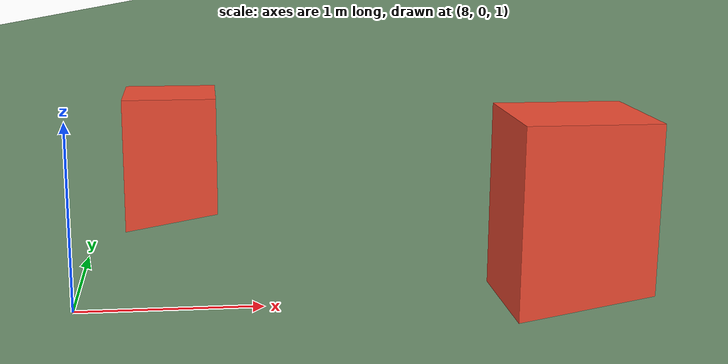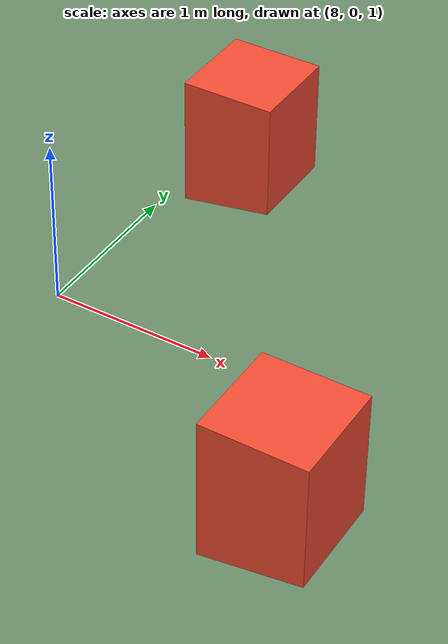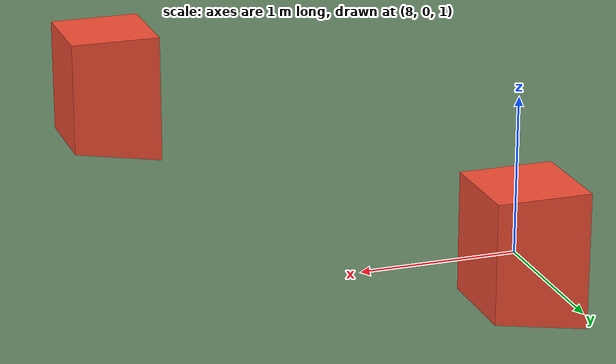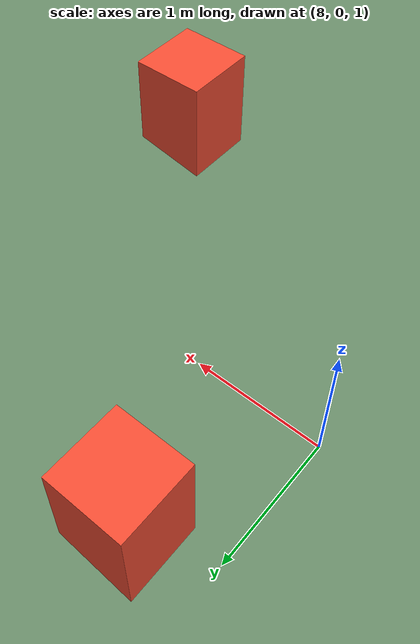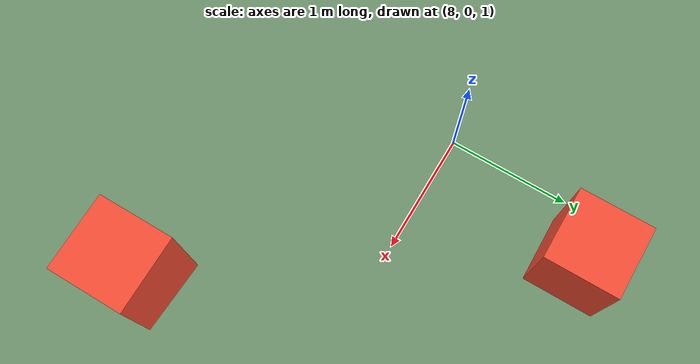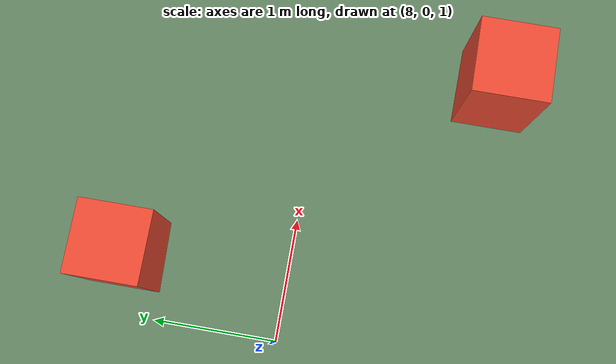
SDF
<?xml version="1.0" ?>
<sdf version="1.6">
  <world name="slope_lidar">
    <plugin filename="ignition-gazebo-physics-system" name="ignition::gazebo::systems::Physics"/>
    <plugin filename="ignition-gazebo-user-commands-system" name="ignition::gazebo::systems::UserCommands"/>
    <plugin filename="ignition-gazebo-scene-broadcaster-system" name="ignition::gazebo::systems::SceneBroadcaster"/>
    <plugin filename="ignition-gazebo-sensors-system" name="ignition::gazebo::systems::Sensors">
      <render_engine>ogre2</render_engine>
    </plugin>
    <plugin filename="ignition-gazebo-imu-system" name="ignition::gazebo::systems::Imu"/>
    <plugin filename="ignition-gazebo-navsat-system" name="ignition::gazebo::systems::NavSat"/>

    <spherical_coordinates>
      <surface_model>EARTH_WGS84</surface_model>
      <latitude_deg>-31.4858037</latitude_deg>
      <longitude_deg>-64.2410570</longitude_deg>
      <elevation>0.0</elevation>
    </spherical_coordinates>

    <light name="sun" type="directional">
      <cast_shadows>0</cast_shadows>
      <pose>0 0 10 0 0 0</pose>
      <diffuse>0.8 0.8 0.8 1</diffuse>
      <specular>0.8 0.8 0.8 1</specular>
      <attenuation>
        <range>1000</range>
        <constant>0.9</constant>
        <linear>0.01</linear>
        <quadratic>0.001</quadratic>
      </attenuation>
      <direction>-0.5 0.1 -0.9</direction>
    </light>

    <model name="ground_plane">
      <static>1</static>
      <link name="link">
        <collision name="collision">
          <pose>0 0 -0.05 0 0 0</pose>
          <geometry>
            <box>
              <size>2000 2000 0.1</size>
            </box>
          </geometry>
          <max_contacts>10</max_contacts>
        </collision>
        <visual name="visual">
          <geometry>
            <plane>
              <normal>0 0 1</normal>
              <size>2000 2000</size>
            </plane>
          </geometry>
          <material>
            <ambient>0.72 0.72 0.72 1</ambient>
            <diffuse>0.72 0.72 0.72 1</diffuse>
            <specular>0.2 0.2 0.2 1</specular>
          </material>
        </visual>
      </link>
    </model>

    <model name="front_slope_10deg">
      <static>1</static>
      <!-- Lower edge starts around x=2 m; upper edge reaches about z=2.1 m.
           Keep the ramp wide so the LiDAR ROI does not see artificial side faces. -->
      <pose>8 0 1.04 0 -0.1745329252 0</pose>
      <link name="link">
        <collision name="collision">
          <geometry>
            <box>
              <size>12 40 0.15</size>
            </box>
          </geometry>
          <max_contacts>10</max_contacts>
        </collision>
        <visual name="visual">
          <geometry>
            <box>
              <size>12 40 0.15</size>
            </box>
          </geometry>
          <material>
            <ambient>0.35 0.45 0.35 1</ambient>
            <diffuse>0.42 0.56 0.42 1</diffuse>
            <specular>0.1 0.1 0.1 1</specular>
          </material>
        </visual>
      </link>
    </model>

    <model name="slope_obstacle_left">
      <static>1</static>
      <pose>8.5 1.25 1.55 0 0 0</pose>
      <link name="link">
        <collision name="collision">
          <geometry>
            <box>
              <size>0.55 0.55 0.8</size>
            </box>
          </geometry>
        </collision>
        <visual name="visual">
          <geometry>
            <box>
              <size>0.55 0.55 0.8</size>
            </box>
          </geometry>
          <material>
            <ambient>0.9 0.25 0.15 1</ambient>
            <diffuse>0.95 0.3 0.2 1</diffuse>
          </material>
        </visual>
      </link>
    </model>

    <model name="slope_obstacle_right">
      <static>1</static>
      <pose>10.2 -1.35 1.85 0 0 0</pose>
      <link name="link">
        <collision name="collision">
          <geometry>
            <box>
              <size>0.55 0.55 0.8</size>
            </box>
          </geometry>
        </collision>
        <visual name="visual">
          <geometry>
            <box>
              <size>0.55 0.55 0.8</size>
            </box>
          </geometry>
          <material>
            <ambient>0.9 0.25 0.15 1</ambient>
            <diffuse>0.95 0.3 0.2 1</diffuse>
          </material>
        </visual>
      </link>
    </model>

    <physics name="3ms" type="dart">
      <max_step_size>0.003</max_step_size>
      <real_time_factor>1</real_time_factor>
    </physics>
  </world>
</sdf>
